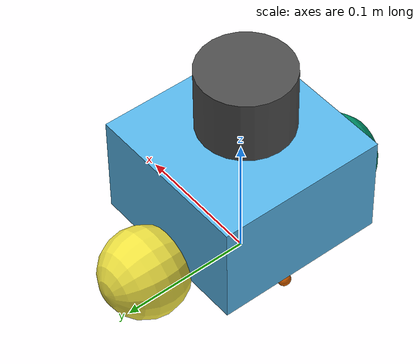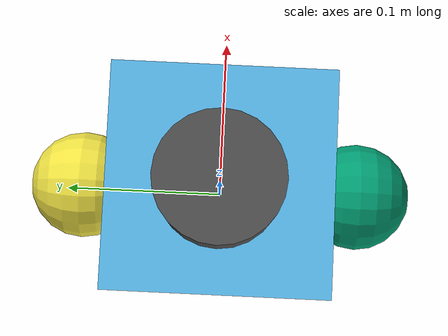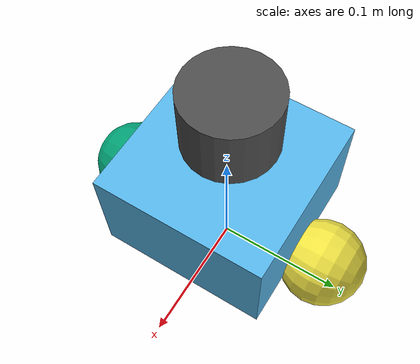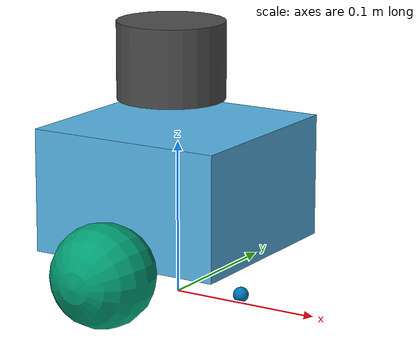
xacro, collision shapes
<?xml version="1.0"?>
<robot name="bumperbot" xmlns:xacro="http://ros.org/wiki/xacro">

  <xacro:arg name="is_ignition" default="true"/>

  <xacro:arg name="is_sim" default="true"/>

  <xacro:include filename="$(find bumperbot_description)/urdf/bumperbot_gazebo.xacro" />

  <xacro:include filename="$(find bumperbot_description)/urdf/bumperbot_ros2_control.xacro" />

  <link name="base_footprint"/>

  <link name="base_link">
    <inertial>
      <origin xyz="0 0 0.04" rpy="0.0 0.25 0.3" />
      <mass value="0.82573504"/>
      <inertia ixx="0.022124416" ixy="-0.000122941" ixz="0.000349387"
               iyy="0.021193702" iyz="-0.00005012"
               izz="0.020064271" />
    </inertial>
    <visual>
      <origin xyz="0 0 0" rpy="0 0 0" />
      <geometry>
        <mesh filename="package://bumperbot_description/meshes/base_link.STL" />
      </geometry>
    </visual>
    <collision>
      <origin xyz="0 0 0.04" rpy="0 0 0" />
      <geometry>
        <box size="0.13 0.13 0.08"/>
      </geometry>
    </collision>
  </link>

  <joint name="base_joint" type="fixed">
    <parent link="base_footprint"/>
    <child link="base_link" />
    <origin xyz="0 0 0.033" rpy="0 0 0"/>
  </joint>

  <link name="wheel_right_link">
    <inertial>
      <origin xyz="0 -0.014 0" rpy="0 0 0" />
      <mass value="0.053"/>
      <inertia ixx="1.88e-5" ixy="0" ixz="0"
               iyy="3.11e-5" iyz="0"
               izz="1.88e-5" />
    </inertial>
    <visual>
      <origin xyz="0 0 0" rpy="1.57 0 0" />
      <geometry>
        <mesh filename="package://bumperbot_description/meshes/wheel_right_link.STL" />
      </geometry>
    </visual>
    <collision>
      <origin xyz="0 -0.015 0" rpy="1.57 0 0" />
      <geometry>
        <sphere radius="0.033"/>
      </geometry>
    </collision>
  </link>

  <joint name="wheel_right_joint" type="continuous">
    <origin xyz="0 -0.07011 0" rpy="0 0 0" />
    <parent link="base_link" />
    <child link="wheel_right_link" />
    <axis xyz="0 1 0" />
  </joint>

  <link name="wheel_left_link">
    <inertial>
      <origin xyz="0 0.014 0" rpy="0 0 0" />
      <mass value="0.053" />
      <inertia ixx="1.88e-5" ixy="0" ixz="0"
               iyy="3.11e-5" iyz="0"
               izz="1.88e-5" />
    </inertial>
    <visual>
      <origin xyz="0 0 0" rpy="-1.57 0 0" />
      <geometry>
        <mesh filename="package://bumperbot_description/meshes/wheel_left_link.STL" />
      </geometry>
    </visual>
    <collision>
      <origin xyz="0 0.015 0" rpy="-1.57 0 0" />
      <geometry>
        <sphere radius="0.033"/>
      </geometry>
    </collision>
  </link>

  <joint name="wheel_left_joint" type="continuous">
    <origin xyz="0 0.07011 0" rpy="0 0 0" />
    <parent link="base_link" />
    <child link="wheel_left_link" />
    <axis xyz="0 1 0" />
  </joint>

  <link name="caster_front_link">
    <inertial>
      <origin xyz="0 0 0" rpy="0 0 0" />
      <mass value="0.005" /> <inertia ixx="1.0e-6" ixy="0" ixz="0"
               iyy="1.0e-6"  iyz="0"
               izz="1.0e-6" />
    </inertial>
    <visual>
      <origin xyz="0 0 0" rpy="0 0 0" />
      <geometry>
        <mesh filename="package://bumperbot_description/meshes/caster_front_link.STL" />
      </geometry>
    </visual>
    <collision>
      <origin xyz="0 0 0" rpy="0 0 0" />
      <geometry>
        <sphere radius="0.005"/>
      </geometry>
    </collision>
  </link>

  <joint name="caster_front_joint" type="fixed">
    <origin xyz="0.04755 0 -0.0275" rpy="0 0 0" />
    <parent link="base_link" />
    <child link="caster_front_link" />
    <axis xyz="0 0 0" />
  </joint>

  <link name="caster_rear_link">
    <inertial>
      <origin xyz="0 0 0" rpy="0 0 0" />
      <mass value="0.005" />
      <inertia ixx="1.0e-6" ixy="0" ixz="0"
               iyy="1.0e-6" iyz="0"
               izz="1.0e-6" />
    </inertial>
    <visual>
      <origin xyz="0 0 0" rpy="0 0 0" />
      <geometry>
        <mesh filename="package://bumperbot_description/meshes/caster_rear_link.STL" />
      </geometry>
    </visual>
    <collision>
      <origin xyz="0 0 0" rpy="0 0 0" />
      <geometry>
        <sphere radius="0.005"/>
      </geometry>
    </collision>
  </link>

  <joint name="caster_rear_joint" type="fixed">
    <origin xyz="-0.04755 0 -0.0275" rpy="0 0 0" />
    <parent link="base_link" />
    <child link="caster_rear_link" />
    <axis xyz="0 0 0" />
  </joint>

  <link name="imu_link">
    <inertial>
      <origin xyz="0 0 0" rpy="0 0 0" />
      <mass value="0.01" />
      <inertia ixx="1.0e-6" ixy="0" ixz="0"
               iyy="1.0e-6" iyz="0"
               izz="1.0e-6" />
    </inertial>
    <visual>
      <origin xyz="0 0 0" rpy="0 0 0" />
      <geometry>
        <mesh filename="package://bumperbot_description/meshes/imu_link.STL" />
      </geometry>
      <material name="">
        <color rgba="0.79 0.82 0.93 1" />
      </material>
    </visual>
    <collision>
      <origin xyz="0 0 0" rpy="0 0 0" />
      <geometry>
        <box size="0.02 0.02 0.02"/>
      </geometry>
    </collision>
  </link>

  <joint name="imu_joint" type="fixed">
    <origin xyz="0 0 0.069" rpy="0 0 0" />
    <parent link="base_link" />
    <child link="imu_link" />
    <axis xyz="0 0 0" />
  </joint>

  <link name="laser_link">
    <inertial>
      <origin xyz="0 0 0" rpy="0 0 0" />
      <mass value="0.073" />
      <inertia ixx="2.0e-5" ixy="0" ixz="0"
               iyy="2.4e-5" iyz="0"
               izz="4.1e-5" />
    </inertial>
    <visual>
      <origin xyz="0 0 0" rpy="0 0 0" />
      <geometry>
        <mesh filename="package://bumperbot_description/meshes/laser_link.STL" />
      </geometry>
      <material name="dark_grey"/>
    </visual>
    <collision>
      <origin xyz="0 0 0" rpy="0 0 0" />
      <geometry>
         <cylinder radius="0.035" length="0.05"/>
      </geometry>
    </collision>
  </link>

  <joint name="laser_joint" type="fixed">
    <origin xyz="-0.005 0 0.12" rpy="0 0 3.14" />
    <parent link="base_link" />
    <child link="laser_link" />
    <axis xyz="0 0 0" />
  </joint>

  <material name="blue">
    <color rgba="0 0 1 1"/>
  </material>
  <material name="black">
    <color rgba="0 0 0 1"/>
  </material>
  <material name="silver">
    <color rgba="0.79 0.82 0.93 1"/>
  </material>
  <material name="dark_grey">
    <color rgba="0.3 0.3 0.3 1"/>
  </material>

</robot>
